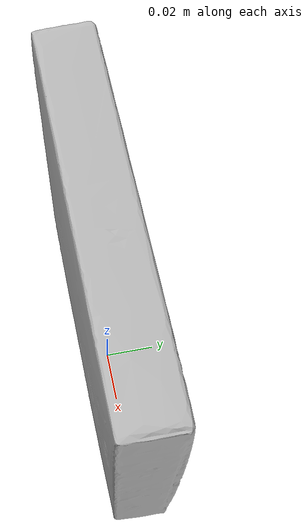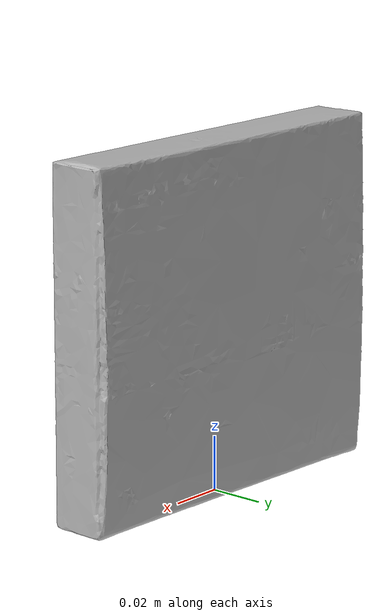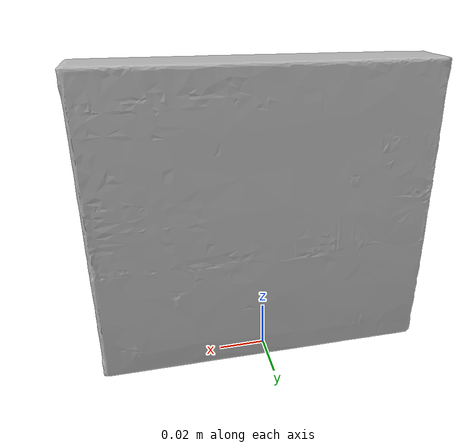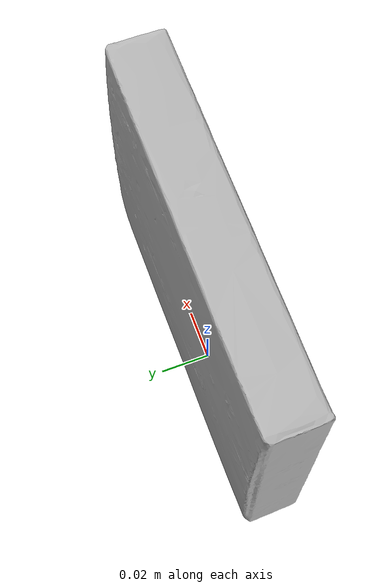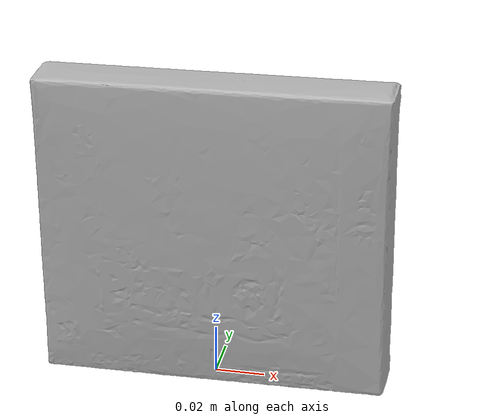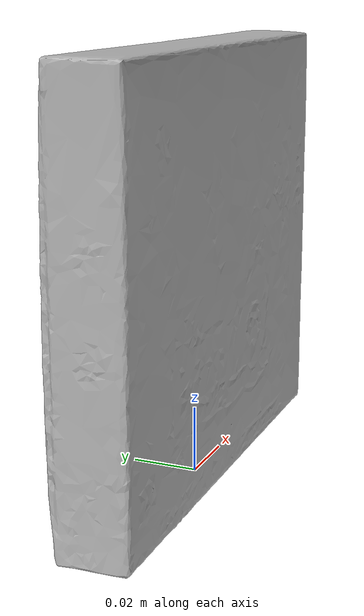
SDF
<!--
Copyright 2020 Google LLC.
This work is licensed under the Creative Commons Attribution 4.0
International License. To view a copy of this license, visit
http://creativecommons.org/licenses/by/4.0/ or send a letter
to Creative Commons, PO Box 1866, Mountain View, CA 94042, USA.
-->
<?xml version="1.0" ?>
<sdf version="1.6">
  <model name="Persona_Q_Shadow_of_the_Labyrinth_Nintendo_3DS">
    <link name="link_0">
      <visual name="visual">
        <geometry>
          <mesh>
            <uri>meshes/model.obj</uri>
          </mesh>
        </geometry>
      </visual>
      <collision name="collision_0">
        <geometry>
          <mesh>
            <uri>meshes/model.obj</uri>
          </mesh>
        </geometry>
      </collision>
    </link>
  </model>
</sdf>
